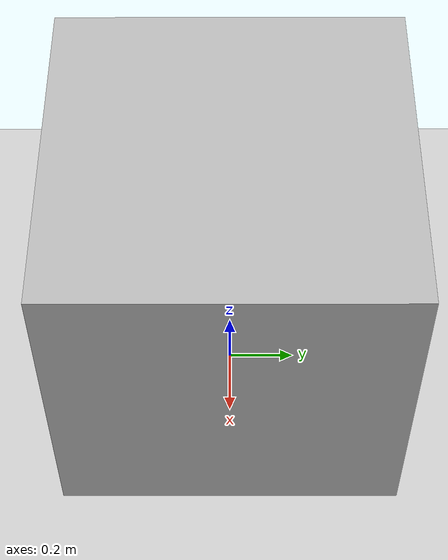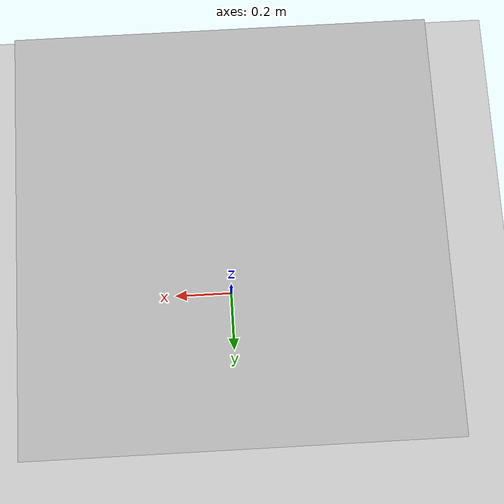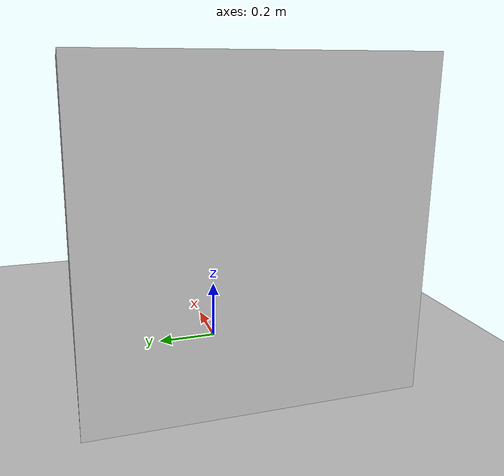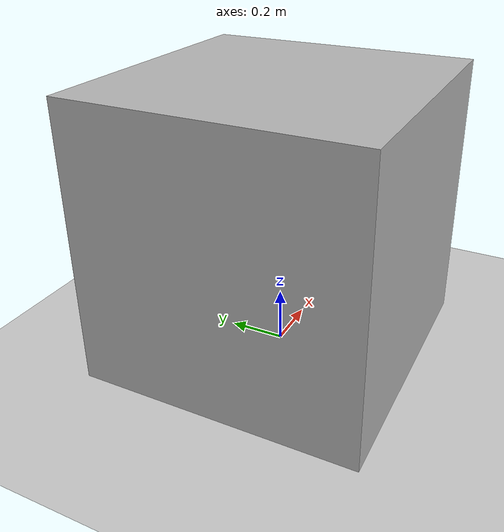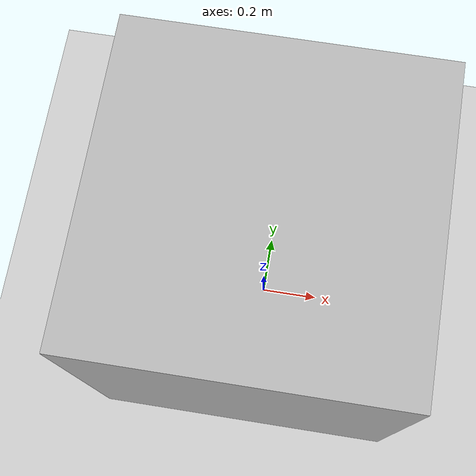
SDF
<?xml version="1.0" ?>
<!--
  Battery demo

  Tests links of the same name under different models and that batteries are
    attached to the correct model.
-->

<sdf version="1.6">
  <world name="battery_demo">

    <physics name="1ms" type="ode">
      <max_step_size>0.001</max_step_size>
      <real_time_factor>1.0</real_time_factor>
    </physics>
    <plugin
      filename="libignition-gazebo-physics-system.so"
      name="ignition::gazebo::systems::Physics">
    </plugin>
    <plugin
      filename="libignition-gazebo-user-commands-system.so"
      name="ignition::gazebo::systems::UserCommands">
    </plugin>
    <plugin
      filename="libignition-gazebo-scene-broadcaster-system.so"
      name="ignition::gazebo::systems::SceneBroadcaster">
    </plugin>

    <gui fullscreen="0">

      <!-- 3D scene -->
      <plugin filename="Scene3D" name="3D View">
        <ignition-gui>
          <title>3D View</title>
          <property type="bool" key="showTitleBar">false</property>
          <property type="string" key="state">docked</property>
        </ignition-gui>

        <engine>ogre2</engine>
        <scene>scene</scene>
        <ambient_light>0.4 0.4 0.4</ambient_light>
        <background_color>0.8 0.8 0.8</background_color>
        <camera_pose>-6 0 6 0 0.5 0</camera_pose>
        <service>/world/battery_demo/scene/info</service>
        <pose_topic>/world/battery_demo/pose/info</pose_topic>
        <scene_topic>/world/battery_demo/scene/info</scene_topic>
        <deletion_topic>/world/battery_demo/scene/deletion</deletion_topic>
      </plugin>

      <!-- World control -->
      <plugin filename="WorldControl" name="World control">
        <ignition-gui>
          <title>World control</title>
          <property type="bool" key="showTitleBar">false</property>
          <property type="bool" key="resizable">false</property>
          <property type="double" key="height">72</property>
          <property type="double" key="width">121</property>
          <property type="double" key="z">1</property>

          <property type="string" key="state">floating</property>
          <anchors target="3D View">
            <line own="left" target="left"/>
            <line own="bottom" target="bottom"/>
          </anchors>
        </ignition-gui>

        <play_pause>true</play_pause>
        <step>true</step>
        <start_paused>true</start_paused>
        <service>/world/battery_demo/control</service>
        <stats_topic>/world/battery_demo/stats</stats_topic>

      </plugin>

      <!-- World statistics -->
      <plugin filename="WorldStats" name="World stats">
        <ignition-gui>
          <title>World stats</title>
          <property type="bool" key="showTitleBar">false</property>
          <property type="bool" key="resizable">false</property>
          <property type="double" key="height">110</property>
          <property type="double" key="width">290</property>
          <property type="double" key="z">1</property>

          <property type="string" key="state">floating</property>
          <anchors target="3D View">
            <line own="right" target="right"/>
            <line own="bottom" target="bottom"/>
          </anchors>
        </ignition-gui>

        <sim_time>true</sim_time>
        <real_time>true</real_time>
        <real_time_factor>true</real_time_factor>
        <iterations>true</iterations>
        <topic>/world/battery_demo/stats</topic>

      </plugin>

    </gui>

    <light type="directional" name="sun">
      <cast_shadows>true</cast_shadows>
      <pose>0 0 10 0 0 0</pose>
      <diffuse>1 1 1 1</diffuse>
      <specular>0.5 0.5 0.5 1</specular>
      <attenuation>
        <range>1000</range>
        <constant>0.9</constant>
        <linear>0.01</linear>
        <quadratic>0.001</quadratic>
      </attenuation>
      <direction>-0.5 0.1 -0.9</direction>
    </light>

    <model name="ground_plane">
      <static>true</static>
      <link name="link">
        <collision name="collision">
          <geometry>
            <plane>
              <normal>0 0 1</normal>
            </plane>
          </geometry>
        </collision>
        <visual name="visual">
          <geometry>
            <plane>
              <normal>0 0 1</normal>
              <size>100 100</size>
            </plane>
          </geometry>
          <material>
            <ambient>0.8 0.8 0.8 1</ambient>
            <diffuse>0.8 0.8 0.8 1</diffuse>
            <specular>0.8 0.8 0.8 1</specular>
            <emissive>0.8 0.8 0.8 1</emissive>
          </material>
        </visual>
      </link>
    </model>

    <model name="linear_battery_demo_model1">
      <pose>0 0 0 0 0 0</pose>
      <static>false</static>
      <link name="body">
        <pose>0 0 0.5 0 0 0</pose>
        <inertial>
          <inertia>
            <ixx>1.8</ixx>
            <ixy>0.0</ixy>
            <ixz>0.0</ixz>
            <iyy>1.8</iyy>
            <iyz>0.0</iyz>
            <izz>1.8</izz>
          </inertia>
          <mass>10.0</mass>
        </inertial>
        <collision name="collision">
          <geometry>
            <box>
              <size>1 1 1</size>
            </box>
          </geometry>
          <surface>
            <friction>
              <ode>
                <mu>0.1</mu>
                <mu2>0.1</mu2>
              </ode>
            </friction>
          </surface>
        </collision>
        <visual name="visual">
          <geometry>
            <box>
              <size>1 1 1</size>
            </box>
          </geometry>
        </visual>
        <battery name="linear_battery1">
          <voltage>12.592</voltage>
        </battery>
      </link>

      <plugin filename="libignition-gazebo-linearbatteryplugin-system.so"
        name="ignition::gazebo::systems::LinearBatteryPlugin">
        <link_name>body</link_name>
        <battery_name>linear_battery1</battery_name>
        <open_circuit_voltage_constant_coef>12.694</open_circuit_voltage_constant_coef>
        <open_circuit_voltage_linear_coef>-3.1424</open_circuit_voltage_linear_coef>
        <initial_charge>1.1665</initial_charge>
        <capacity>1.2009</capacity>
        <resistance>0.061523</resistance>
        <smooth_current_tau>1.9499</smooth_current_tau>
      </plugin>
      <plugin filename="libignition-gazebo-linearbatteryconsumerplugin-system.so"
         name="ignition::gazebo::systems::LinearBatteryConsumerPlugin">
        <link_name>body</link_name>
        <battery_name>linear_battery1</battery_name>
        <power_load>6.6</power_load>
      </plugin>

    </model>

    <model name="linear_battery_demo_model2">
      <pose>0 0 0 0 0 0</pose>
      <static>false</static>
      <link name="body">
        <pose>0 0 0.5 0 0 0</pose>
        <inertial>
          <inertia>
            <ixx>1.8</ixx>
            <ixy>0.0</ixy>
            <ixz>0.0</ixz>
            <iyy>1.8</iyy>
            <iyz>0.0</iyz>
            <izz>1.8</izz>
          </inertia>
          <mass>10.0</mass>
        </inertial>
        <collision name="collision">
          <geometry>
            <box>
              <size>1 1 1</size>
            </box>
          </geometry>
          <surface>
            <friction>
              <ode>
                <mu>0.1</mu>
                <mu2>0.1</mu2>
              </ode>
            </friction>
          </surface>
        </collision>
        <visual name="visual">
          <geometry>
            <box>
              <size>1 1 1</size>
            </box>
          </geometry>
        </visual>
        <battery name="linear_battery2">
          <voltage>12.592</voltage>
        </battery>
      </link>

      <plugin filename="libignition-gazebo-linearbatteryplugin-system.so"
        name="ignition::gazebo::systems::LinearBatteryPlugin">
        <link_name>body</link_name>
        <battery_name>linear_battery2</battery_name>
        <open_circuit_voltage_constant_coef>12.694</open_circuit_voltage_constant_coef>
        <open_circuit_voltage_linear_coef>-3.1424</open_circuit_voltage_linear_coef>
        <initial_charge>1.1665</initial_charge>
        <capacity>1.2009</capacity>
        <resistance>0.061523</resistance>
        <smooth_current_tau>1.9499</smooth_current_tau>
      </plugin>
      <plugin filename="libignition-gazebo-linearbatteryconsumerplugin-system.so"
         name="ignition::gazebo::systems::LinearBatteryConsumerPlugin">
        <link_name>body</link_name>
        <battery_name>linear_battery2</battery_name>
        <power_load>6.6</power_load>
      </plugin>

    </model>

  </world>
</sdf>
